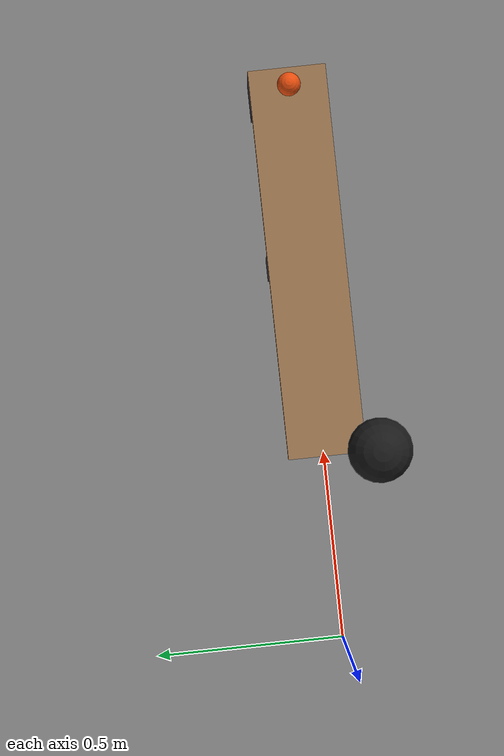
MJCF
<mujoco model="seesaw_throw">
  <compiler angle="radian"/>
  <option timestep="0.002"/>
  <worldbody>
    <geom name="floor" type="plane" size="8 8 0.1" friction="0.8 0.005 0.002"/>
    <body name="fulcrum">
      <geom name="fulcrum" type="box" pos="1 0 0.06" size="0.03 0.1 0.06" rgba="0.25 0.25 0.3 1"/>
    </body>
    <body name="rest block">
      <geom name="rest block" type="box" pos="1.45 0 0.0675" size="0.05 0.1 0.0675" rgba="0.2 0.2 0.25 1"/>
    </body>
    <body name="seesaw" pos="1 0 0.15">
      <joint name="seesaw_hinge" type="hinge" pos="0 0 0" axis="0 1 0" limited="true" range="-0.261799 0.174533" damping="0.01"/>
      <geom name="seesaw" type="box" pos="0 0 0" size="0.5 0.1 0.015" mass="0.3" friction="0.8 0.005 0.0001" rgba="0.6 0.45 0.3 1"/>
    </body>
    <body name="ball" pos="1.45 0 0.195">
      <freejoint/>
      <geom name="ball" type="sphere" pos="0 0 0" size="0.03" mass="0.1" condim="6" friction="0.8 0.01 0.004" rgba="0.9 0.3 0.05 1"/>
    </body>
    <body name="weight" pos="0.6 0 1.5">
      <freejoint/>
      <geom name="weight" type="sphere" pos="0 0 0" size="0.05" mass="1" friction="0.8 0.005 0.0001" solref="0.01 1" rgba="0.1 0.1 0.1 1"/>
    </body>
  </worldbody>
  <keyframe>
    <key name="start" qpos="0 1.45 0 0.195 1 0 0 0 0.6 0 1.5 1 0 0 0" qvel="0 0 0 0 0 0 0 0 0 0 0 0 0"/>
  </keyframe>
</mujoco>
